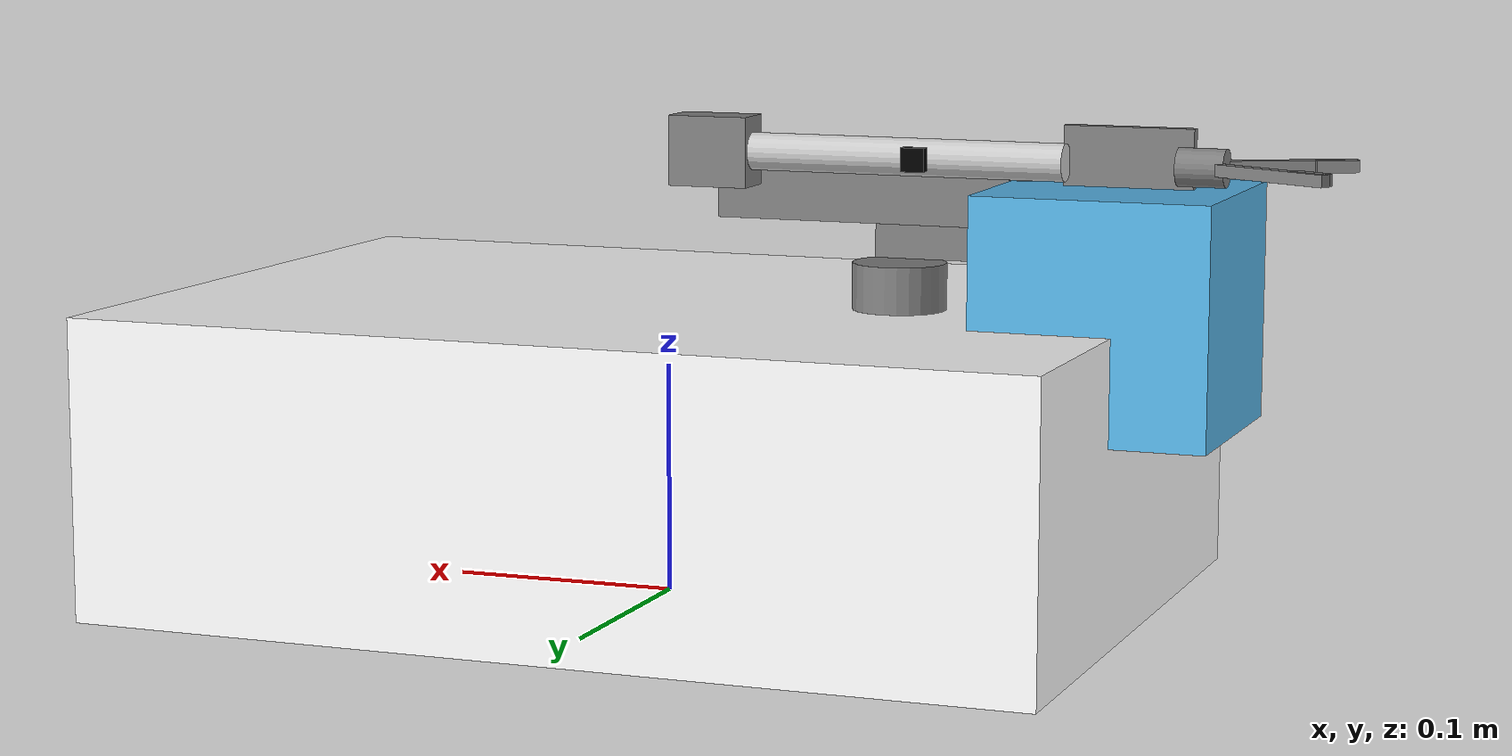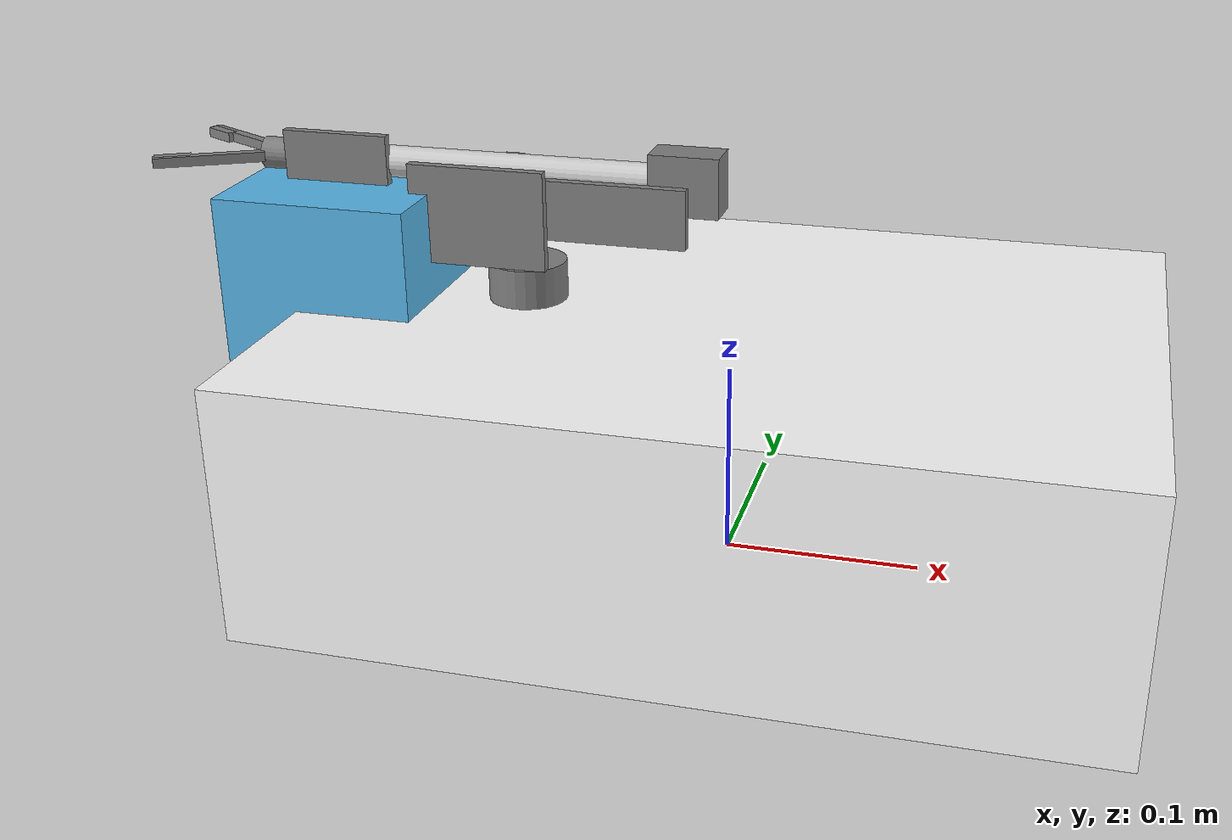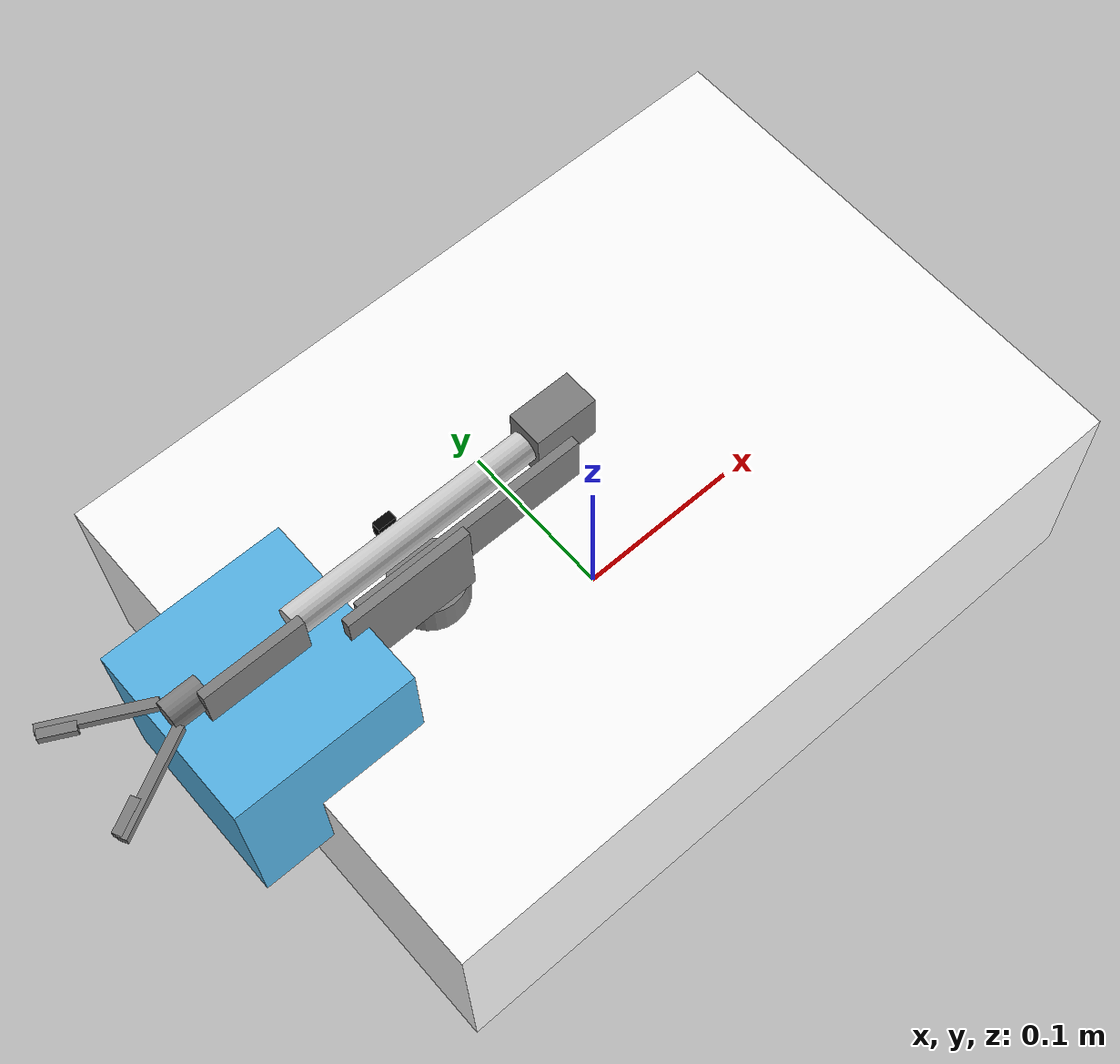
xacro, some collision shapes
<?xml version="1.0"?>
<robot name="robot" xmlns:xacro="http://www.ros.org/wiki/xacro">

  <xacro:include filename="$(find my_robot)/urdf/robot.gazebo" />

  <material name="gray">
    <color rgba="0.5 0.5 0.5 1"/>
  </material>

  <material name="white">
    <color rgba="1 1 1 1"/>
  </material>

  <material name="light_gray">
    <color rgba="0.8 0.8 0.8 1"/>
  </material>

  <material name="black">
    <color rgba="0 0 0 1"/>
  </material>

  <!-- base_link -->
  <link name="base_link">
   <inertial>
     <origin xyz="0 0 0.0625" rpy="0 0 0"/>
     <mass value="3"/>
     <inertia ixx="1.0" ixy="0.0" ixz="0.0" iyy="1.0" iyz="0.0" izz="1.0"/>
   </inertial>

    <visual>
      <origin xyz="0 0 0.065" rpy="0 0 0"/>
      <geometry>
        <box size="0.42 0.3 0.13"/>
      </geometry>
      <material name="white"/>
    </visual>

    <collision>
      <origin xyz="0 0 0.0625" rpy="0 0 0"/>
      <geometry>
        <box size="0.42 0.3 0.13"/>
      </geometry>
    </collision>
  </link>

  <!-- Hokuyo Laser -->
  <link name="hokuyo_link">
    <collision>
      <geometry>
        <box size="0.1 0.1 0.1"/>
      </geometry>
    </collision>

    <visual>
      <geometry>
        <mesh filename="package://my_robot/meshes/hokuyo.dae" scale="0.2 0.2 0.2"/>
      </geometry>
    </visual>

    <inertial>
      <mass value="1e-5" />
      <inertia ixx="1.0" ixy="0.0" ixz="0.0" iyy="1.0" iyz="0.0" izz="1.0"/>
    </inertial>
  </link>

  <joint name="hokuyo_joint" type="fixed">
    <origin xyz="-0.2 0 0.135" rpy="0 0 3.14"/>
    <parent link="base_link"/>
    <child link="hokuyo_link"/>
  </joint>

  <!-- link1 -->
  <link name="link1">
   <inertial>
     <origin xyz="0 0 0" rpy="0 0 0"/>
     <mass value="1.5"/>
     <inertia ixx="1.0" ixy="0.0" ixz="0.0" iyy="1.0" iyz="0.0" izz="1.0"/>
   </inertial>

    <visual>
      <origin xyz="0 0 0" rpy="0 0 0"/>
      <geometry>
        <cylinder length="0.02" radius="0.02"/>
      </geometry>
      <material name="gray"/>
    </visual>

    <collision>
      <origin xyz="0 0 0" rpy="0 0 0"/>
      <geometry>
        <cylinder length="0.02" radius="0.02"/>
      </geometry>
    </collision>
  </link>

  <!-- base_to_link1 -->
  <joint name="base_to_link1" type="revolute">
	<safety_controller k_position="100.0" k_velocity="40.0" soft_lower_limit="-1.57" soft_upper_limit="1.396"/>
    <origin xyz="-0.105 0 0.14" rpy="0 0 0"/>
    <parent link="base_link"/>
    <child link="link1"/>
    <axis xyz="0 0 1"/>
    <limit effort="0.245166" lower="-1.57" upper="1.396" velocity="0.5"/>
  </joint>

  <!-- for_link2 -->
  <link name="for_link2">
    <inertial>
      <mass value="1e-5" />
      <origin xyz="-0.02 -0.015 0.035" rpy="0 0 0"/>
      <inertia ixx="1.0" ixy="0.0" ixz="0.0" iyy="1.0" iyz="0.0" izz="1.0"/>
    </inertial>

    <visual>
      <origin xyz="-0.02 -0.015 0.035" rpy="0 0 0"/>
      <geometry>
        <box size="0.07 0.005 0.05"/>
      </geometry>
      <material name="gray"/>
    </visual>

    <collision>
      <origin xyz="-0.02 -0.015 0.035" rpy="0 0 0"/>
      <geometry>
        <box size="0.07 0.005 0.05"/>
      </geometry>
    </collision>
  </link>

  <!-- link1_to_for_link2 -->
  <joint name="link1_to_for_link2" type="fixed">
    <parent link="link1"/>
    <child link="for_link2"/>
  </joint>

  <!-- link2 -->
  <link name="link2">
    <inertial>
      <mass value="1e-5" />
      <origin xyz="0.07 0 0" rpy="0 0 0"/>
      <inertia ixx="1.0" ixy="0.0" ixz="0.0" iyy="1.0" iyz="0.0" izz="1.0"/>
    </inertial>
    <visual>
      <origin xyz="0.07 0 0" rpy="0 0 0"/>
      <geometry>
        <box size="0.13 0.005 0.03"/>
      </geometry>
      <material name="gray"/>
    </visual>

    <collision>
      <origin xyz="0.07 0 0" rpy="0 0 0"/>
      <geometry>
        <box size="0.13 0.005 0.03"/>
      </geometry>
    </collision>
  </link>

  <!-- for_link2_to_link2 -->
  <joint name="for_link2_to_link2" type="revolute">
    <safety_controller k_position="100.0" k_velocity="40.0" soft_lower_limit="-3.14" soft_upper_limit="0"/>
    <origin xyz="-0.05 -0.01 0.04" rpy="0 0 0"/>
    <parent link="for_link2"/>
    <child link="link2"/>
    <limit effort="0.245166" lower="-3.14" upper="0" velocity="0.5"/>
    <axis xyz="0 1 0"/>
  </joint>

  <!-- link3 -->
  <link name="link3">
    <inertial>
      <mass value="1e-5" />
      <origin xyz="0 0 0" rpy="0 0 0"/>
      <inertia ixx="1.0" ixy="0.0" ixz="0.0" iyy="1.0" iyz="0.0" izz="1.0"/>
    </inertial>

    <visual>
      <origin xyz="0 0 0" rpy="0 0 0"/>
      <geometry>
        <box size="0.035 0.02 0.03"/>
      </geometry>
      <material name="gray"/>
    </visual>

    <collision>
      <origin xyz="0 0 0" rpy="0 0 0"/>
      <geometry>
        <box size="0.035 0.02 0.03"/>
      </geometry>
    </collision>
  </link>

  <!-- link2_to_link3 -->
  <joint name="link2_to_link3" type="revolute">
    <safety_controller k_position="100.0" k_velocity="40.0" soft_lower_limit="0" soft_upper_limit="3.14"/>
    <origin xyz="0.1325 0.013 0.015" rpy="0 0 0"/>
    <parent link="link2"/>
    <child link="link3"/>
    <limit effort="0.245166" lower="0" upper="3.14" velocity="0.5"/>
    <axis xyz="0 1 0"/>
  </joint>

  <!-- link4 -->
  <link name="link4">
    <inertial>
      <mass value="1e-5" />
      <origin xyz="-0.01 0 0" rpy="0 0 0"/>
      <inertia ixx="1.0" ixy="0.0" ixz="0.0" iyy="1.0" iyz="0.0" izz="1.0"/>
    </inertial>

    <visual>
      <origin xyz="-0.0725 0 0" rpy="0 1.57 0"/>
      <geometry>
        <cylinder length="0.145" radius="0.008"/>
      </geometry>
      <material name="light_gray"/>
    </visual>

    <collision>
      <origin xyz="-0.0725 0 0" rpy="0 1.57 0"/>
      <geometry>
        <cylinder length="0.145" radius="0.008"/>
      </geometry>
    </collision>
  </link>

  <!-- link3_to_link4 -->
  <joint name="link3_to_link4" type="revolute">
    <safety_controller k_position="100.0" k_velocity="40.0" soft_lower_limit="-1.57" soft_upper_limit="1.57"/>
    <origin xyz="-0.01 0 0" rpy="0 0 0"/>
    <parent link="link3"/>
    <child link="link4"/>
    <limit effort="0.245166" lower="-1.57" upper="1.57" velocity="0.5"/>
    <axis xyz="1 0 0"/>
  </joint>

  <!-- imu_block_link -->
  <link name="imu_block_link">
    <collision>
      <origin xyz="-0.0825 0 0" rpy="0 0 0"/>
      <geometry>
        <box size="0.01 0.005 0.01"/>
      </geometry>
    </collision>

    <visual>
      <origin xyz="-0.0825 0.0105 0" rpy="0 0 0"/>
      <geometry>
        <box size="0.01 0.005 0.01"/>
      </geometry>
      <material name="black"/>
    </visual>

    <inertial>
      <mass value="1e-5" />
      <origin xyz="-0.0825 0 0" rpy="0 0 0"/>
      <inertia ixx="1.0" ixy="0.0" ixz="0.0" iyy="1.0" iyz="0.0" izz="1.0"/>
    </inertial>
  </link>

  <joint name="imu_block_joint" type="fixed">
    <parent link="link4"/>
    <child link="imu_block_link"/>
  </joint>

  <!-- for_link5_left -->
  <link name="for_link5_left">
    <inertial>
      <mass value="1e-5" />
      <origin xyz="-0.17 -0.008 0" rpy="0 0 0"/>
      <inertia ixx="1e-6" ixy="0" ixz="0" iyy="1e-6" iyz="0" izz="1e-6" />
    </inertial>

    <visual>
      <origin xyz="-0.17 -0.008 0" rpy="0 0 0"/>
      <geometry>
        <box size="0.055 0.005 0.03"/>
      </geometry>
      <material name="gray"/>
    </visual>

    <collision>
      <origin xyz="-0.17 -0.008 0" rpy="0 0 0"/>
      <geometry>
        <box size="0.055 0.005 0.03"/>
      </geometry>
    </collision>
  </link>

  <!-- link4_to_for_link5_left -->
  <joint name="link4_to_for_link5_left" type="fixed">
    <parent link="link4"/>
    <child link="for_link5_left"/>
  </joint>

  <!-- link5 -->
  <link name="link5">
    <inertial>
      <mass value="1e-5" />
      <origin xyz="-0.015 0 0" rpy="0 1.57 0"/>
      <inertia ixx="1.0" ixy="0.0" ixz="0.0" iyy="1.0" iyz="0.0" izz="1.0"/>
    </inertial>

    <visual>
      <origin xyz="-0.015 0 0" rpy="0 1.57 0"/>
      <geometry>
        <cylinder length="0.02" radius="0.008"/>
      </geometry>
      <material name="gray"/>
    </visual>

    <collision>
      <origin xyz="-0.015 0 0" rpy="0 1.57 0"/>
      <geometry>
        <cylinder length="0.02" radius="0.008"/>
      </geometry>
    </collision>
  </link>

  <!-- for_link5_left_to_link5 -->
  <joint name="for_link5_left_to_link5" type="revolute">
    <safety_controller k_position="100.0" k_velocity="40.0" soft_lower_limit="-1.57" soft_upper_limit="1.57"/>
    <origin xyz="-0.1875 0 0" rpy="0 0 0"/>
    <parent link="for_link5_left"/>
    <child link="link5"/>
    <limit effort="0.245166" lower="-1.57" upper="1.57" velocity="0.5"/>
    <axis xyz="0 1 0"/>
  </joint>

  <!-- GRIPPER -->

  <!-- right_finger -->
  <link name="right_finger">
    <inertial>
      <mass value="1e-5" />
      <origin xyz="-0.0275 0.01 0" rpy="0.48539 1.57 0"/>
      <inertia ixx="1.0" ixy="0.0" ixz="0.0" iyy="1.0" iyz="0.0" izz="1.0"/>
    </inertial>

    <visual>
      <origin xyz="-0.0275 0.01 0" rpy="0.48539 1.57 0"/>
      <geometry>
        <box size="0.005 0.005 0.055"/>
      </geometry>
      <material name="gray"/>
    </visual>

    <collision>
      <origin xyz="-0.0275 0.01 0" rpy="0.5 1.57 0"/>
      <geometry>
        <box size="0.005 0.005 0.055"/>
      </geometry>
    </collision>
  </link>

  <!-- link5_to_right_finger -->
  <joint name="link5_to_right_finger" type="revolute">
    <safety_controller k_position="100.0" k_velocity="40.0" soft_lower_limit="-0.5" soft_upper_limit="0.5"/>
    <origin xyz="-0.02 0.01 0" rpy="0 0 0"/>
    <parent link="link5"/>
    <child link="right_finger"/>
    <limit effort="0.980665" lower="-0.5" upper="0.5" velocity="0.5"/>
    <axis xyz="0 0 1"/>
  </joint>

  <!-- left_finger -->
  <link name="left_finger">
    <inertial>
      <mass value="1e-5" />
      <origin xyz="-0.0275 -0.01 0" rpy="-0.48539 1.57 0"/>
      <inertia ixx="1.0" ixy="0.0" ixz="0.0" iyy="1.0" iyz="0.0" izz="1.0"/>
    </inertial>

    <visual>
      <origin xyz="-0.0275 -0.01 0" rpy="-0.48539 1.57 0"/>
      <geometry>
        <box size="0.005 0.005 0.055"/>
      </geometry>
      <material name="gray"/>
    </visual>

    <collision>
      <origin xyz="-0.0275 -0.01 0" rpy="-0.48539 1.57 0"/>
      <geometry>
        <box size="0.005 0.005 0.055"/>
      </geometry>
    </collision>
  </link>

  <!-- link5_to_left_finger -->
  <joint name="link5_to_left_finger" type="revolute">
    <safety_controller k_position="100.0" k_velocity="40.0" soft_lower_limit="-0.5" soft_upper_limit="0.5"/>
    <origin xyz="-0.02 -0.01 0" rpy="0 0 0"/>
    <parent link="link5"/>
    <child link="left_finger"/>
    <limit effort="0.980665" lower="-0.5" upper="0.5" velocity="0.5"/>
    <axis xyz="0 0 1"/>
  </joint>

  <!-- right_tip -->
  <link name="right_tip">
    <inertial>
      <mass value="1e-5" />
      <origin xyz="-0.0445 0.016 0" rpy="0.48539 1.57 0"/>
      <inertia ixx="1.0" ixy="0.0" ixz="0.0" iyy="1.0" iyz="0.0" izz="1.0"/>
    </inertial>

    <visual>
      <origin xyz="-0.0445 0.016 0" rpy="0.48539 1.57 0"/>
      <geometry>
        <box size="0.005 0.005 0.018"/>
      </geometry>
      <material name="gray"/>
    </visual>

    <collision>
      <origin xyz="-0.0445 0.016 0" rpy="0.48539 1.57 0"/>
      <geometry>
        <box size="0.005 0.005 0.018"/>
      </geometry>
    </collision>
  </link>

  <!-- right_finger_to_right_tip -->
  <joint name="right_finger_to_right_tip" type="fixed">
    <parent link="right_finger"/>
    <child link="right_tip"/>
  </joint>

  <!-- left_tip -->
  <link name="left_tip">
    <inertial>
      <mass value="1e-5" />
      <origin xyz="-0.0445 -0.016 0" rpy="-0.48539 1.57 0"/>
      <inertia ixx="1.0" ixy="0.0" ixz="0.0" iyy="1.0" iyz="0.0" izz="1.0"/>
    </inertial>

    <visual>
      <origin xyz="-0.0445 -0.016 0" rpy="-0.48539 1.57 0"/>
      <geometry>
        <box size="0.005 0.005 0.018"/>
      </geometry>
      <material name="gray"/>
    </visual>

    <collision>
      <origin xyz="-0.0445 -0.016 0" rpy="-0.48539 1.57 0"/>
      <geometry>
        <box size="0.005 0.005 0.018"/>
      </geometry>
    </collision>
  </link>

  <!-- left_finger_to_left_tip -->
  <joint name="left_finger_to_left_tip" type="fixed">
    <parent link="left_finger"/>
    <child link="left_tip"/>
  </joint>

</robot>
